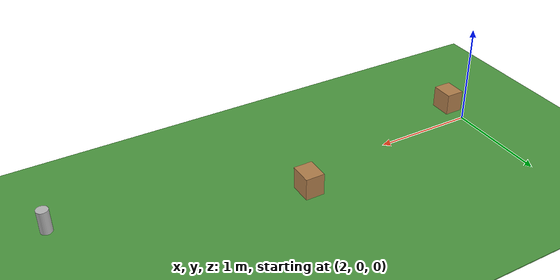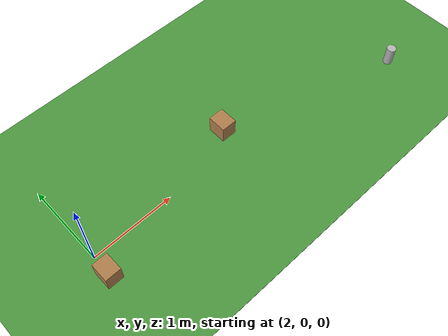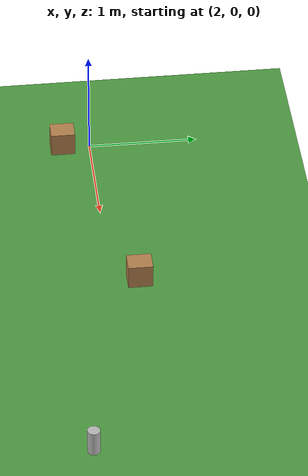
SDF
<sdf version="1.7">
 <world name="default">
  <scene>
   <grid>0</grid>
   <ambient>0.4 0.4 0.4 1</ambient>
   <background>0.7 0.7 0.7 1</background>
   <shadows>1</shadows>
  </scene>
  <light name="sun" type="directional">
   <pose>0 0 10 0 -0 0</pose>
   <diffuse>0.8 0.8 0.8 1</diffuse>
   <specular>0.2 0.2 0.2 1</specular>
   <attenuation>
    <range>1000</range>
    <constant>0.9</constant>
    <linear>0.01</linear>
    <quadratic>0.001</quadratic>
   </attenuation>
   <direction>-0.5 0.1 -0.9</direction>
   <spot><inner_angle>0</inner_angle><outer_angle>0</outer_angle><falloff>0</falloff></spot>
  </light>
  <model name="ground">
   <link name="body">
    <collision name="geom">
     <geometry><plane><normal>0 0 1</normal><size>1 1</size></plane></geometry>
     <surface><friction><ode><mu>100</mu><mu2>50</mu2></ode></friction></surface>
    </collision>
   </link>
   <static>1</static>
  </model>
  <model name="ground2">
   <pose>0 0 -0.01 0 -0 0</pose>
   <static>1</static>
   <link name="ground">
    <collision name="ground_coll"><geometry><box><size>200 10 0.01</size></box></geometry></collision>
    <visual name="ground_vis">
     <geometry><box><size>200 10 0.01</size></box></geometry>
     <material>
      <script><uri>file://media/materials/scripts/gazebo.material</uri><name>Gazebo/Grass</name></script>
     </material>
    </visual>
   </link>
  </model>
  <model name="wood_cube_1">
   <link name="link">
    <pose>0 0 0.106549 0 -0 0</pose>
    <inertial>
     <mass>4.71238</mass>
     <inertia>
      <ixx>0.0385767</ixx>
      <ixy>0</ixy>
      <ixz>0</ixz>
      <iyy>0.0327957</iyy>
      <iyz>0</iyz>
      <izz>0.0328541</izz>
     </inertia>
    </inertial>
    <visual name="visual">
     <geometry><box><size>0.185663 0.221792 0.221457</size></box></geometry>
     <material>
      <script><uri>file://media/materials/scripts/gazebo.material</uri><name>Gazebo/Wood</name></script>
     </material>
    </visual>
    <collision name="collision">
     <geometry><box><size>0.185663 0.221792 0.221457</size></box></geometry>
    </collision>
   </link>
   <static>0</static>
   <pose>2 -0.25 0 0 -0 0</pose>
  </model>
  <model name="wood_cube_2">
   <link name="link">
    <pose>0 0 0.106549 0 -0 0</pose>
    <inertial>
     <mass>4.71238</mass>
     <inertia>
      <ixx>0.0385767</ixx>
      <ixy>0</ixy>
      <ixz>0</ixz>
      <iyy>0.0327957</iyy>
      <iyz>0</iyz>
      <izz>0.0328541</izz>
     </inertia>
    </inertial>
    <visual name="visual">
     <geometry><box><size>0.185663 0.221792 0.221457</size></box></geometry>
     <material>
      <script><uri>file://media/materials/scripts/gazebo.material</uri><name>Gazebo/Wood</name></script>
     </material>
    </visual>
    <collision name="collision">
     <geometry><box><size>0.185663 0.221792 0.221457</size></box></geometry>
    </collision>
   </link>
   <static>0</static>
   <pose>4 0.25 0 0 -0 0</pose>
  </model>
  <gravity>0 0 -9.8</gravity>
  <magnetic_field>6e-06 2.3e-05 -4.2e-05</magnetic_field>
  <atmosphere type="adiabatic"/>
  <physics type="ode">
   <max_step_size>0.001</max_step_size>
   <real_time_factor>1</real_time_factor>
   <real_time_update_rate>1000</real_time_update_rate>
  </physics>
  <spherical_coordinates>
   <surface_model>EARTH_WGS84</surface_model>
   <latitude_deg>0</latitude_deg>
   <longitude_deg>0</longitude_deg>
   <elevation>0</elevation>
   <heading_deg>0</heading_deg>
  </spherical_coordinates>
  <model name="beer">
   <link name="link">
    <pose>0 0 0.115 0 -0 0</pose>
    <inertial>
     <mass>0.39</mass>
     <inertia><ixx>0.00058</ixx><ixy>0</ixy><ixz>0</ixz><iyy>0.00058</iyy><iyz>0</iyz><izz>0.00019</izz></inertia>
    </inertial>
    <collision name="collision">
     <geometry><cylinder><radius>0.055</radius><length>0.23</length></cylinder></geometry>
    </collision>
    <visual name="visual">
     <geometry><cylinder><radius>0.055</radius><length>0.23</length></cylinder></geometry>
     <material>
      <script>
       <uri>model://beer/materials/scripts</uri>
       <uri>model://beer/materials/textures</uri>
       <name>Beer/Diffuse</name>
      </script>
     </material>
    </visual>
   </link>
   <pose>6.19225 -0.381474 0 0 -0 0</pose>
  </model>
 </world>
</sdf>
